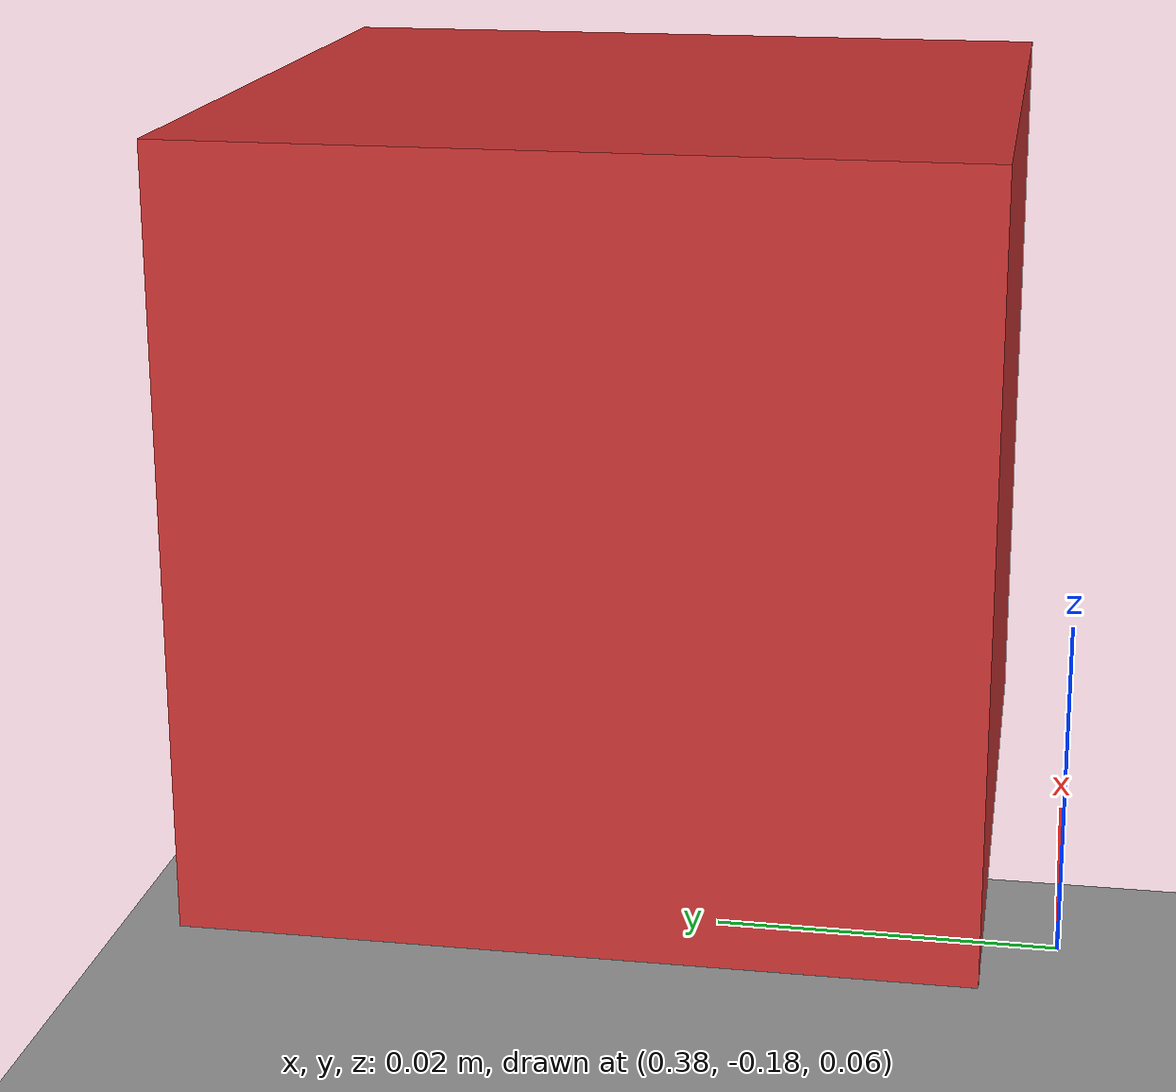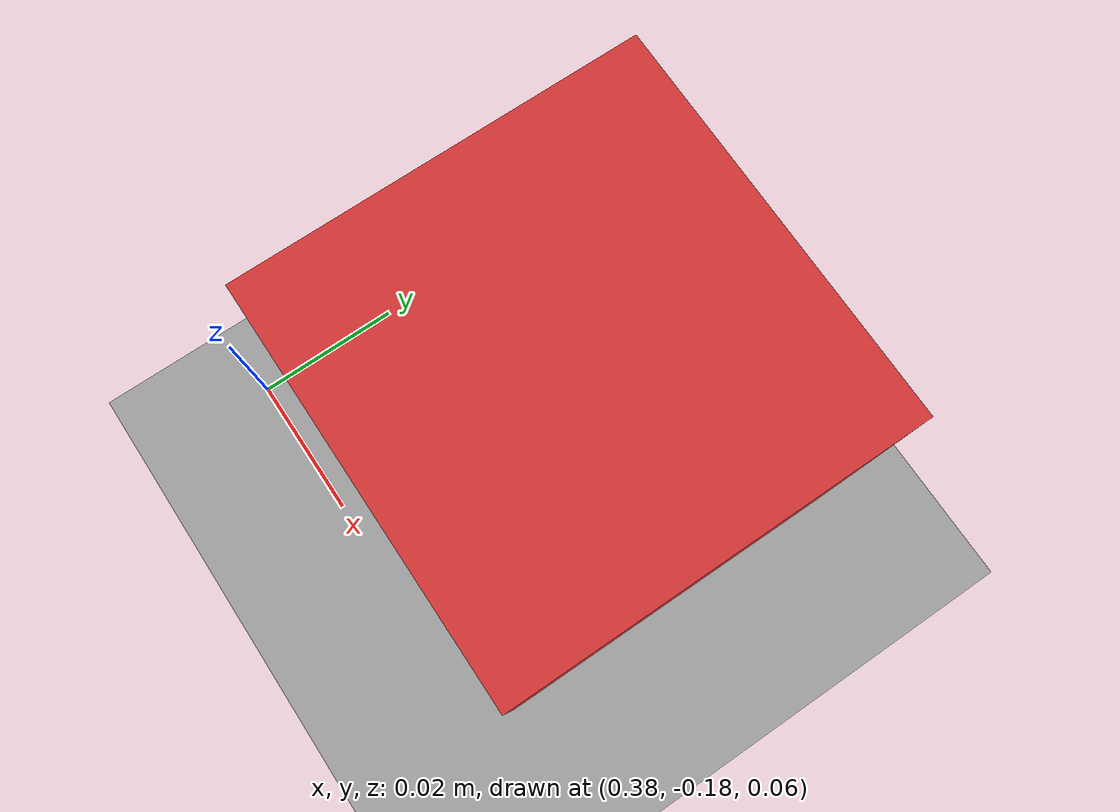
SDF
<?xml version="1.0"?>
<sdf version="1.7">
  <model name="pick_and_place_scene">
    <!-- Ground plane -->
    <model name="ground">
      <static>true</static>
      <link name="ground_link">
        <pose>0 0 -0.005 0 0 0</pose>
        <visual name="ground_visual">
          <geometry>
            <box>
              <size>10 10 0.01</size>
            </box>
          </geometry>
          <material>
            <ambient>0.8 0.8 0.8 1</ambient>
            <diffuse>0.8 0.8 0.8 1</diffuse>
          </material>
        </visual>
        <collision name="ground_collision">
          <geometry>
            <box>
              <size>10 10 0.01</size>
            </box>
          </geometry>
        </collision>
      </link>
    </model>

    <!-- Raised work platform (1 inch = 0.0254 m) in front of the robot -->
    <model name="work_platform">
      <static>true</static>
      <!-- Centered at x=0.4 so the robot base at the world origin is not on the platform -->
      <pose>0.3 0 0.0127 0 0 0</pose>
      <link name="platform_link">
        <visual name="platform_visual">
          <geometry>
            <box>
              <size>1.0 1.0 0.0254</size>
            </box>
          </geometry>
          <material>
            <ambient>0.6 0.6 0.6 1</ambient>
            <diffuse>0.6 0.6 0.6 1</diffuse>
          </material>
        </visual>
        <collision name="platform_collision">
          <geometry>
            <box>
              <size>1.0 1.0 0.0254</size>
            </box>
          </geometry>
          <surface>
            <friction>
              <ode>
                <mu>0.1</mu>
                <mu2>0.1</mu2>
              </ode>
            </friction>
          </surface>
        </collision>
      </link>
    </model>

    <model name="box_red">
      <pose>0.41 -0.15 0.08 0 0 0</pose>
      <link name="box_link">
        <inertial>
          <!-- 2-inch (0.0508 m) ABS cube; mass ≈ 0.067 kg -->
          <mass>0.0672</mass>
          <!-- Solid cube inertia: I = (1/6) m a^2 with a = 0.0508 m -->
          <inertia>
            <ixx>2.88e-05</ixx>
            <iyy>2.88e-05</iyy>
            <izz>2.88e-05</izz>
            <ixy>0</ixy>
            <ixz>0</ixz>
            <iyz>0</iyz>
          </inertia>
        </inertial>
        <visual name="visual">
          <geometry>
            <box>
              <size>0.0508 0.0508 0.0508</size> <!-- 2 inches -->
            </box>
          </geometry>
          <material>
            <ambient>0.8 0.2 0.2 1</ambient>
            <diffuse>0.8 0.2 0.2 1</diffuse>
          </material>
        </visual>
        <collision name="collision">
          <geometry>
            <box>
              <size>0.0508 0.0508 0.0508</size>
            </box>
          </geometry>
          <surface>
            <!-- High friction to make the cube stick between fingers in sim -->
            <friction>
              <ode>
                <mu>150.0</mu>
                <mu2>150.0</mu2>
              </ode>
            </friction>
            <contact>
              <ode>
                <!-- Keep a relatively stiff contact; a bit more damping to reduce chatter -->
                <kp>15.0e5</kp>
                <kd>15.0</kd>
              </ode>
            </contact>
          </surface>
        </collision>
      </link>
    </model>

  </model>
</sdf>
